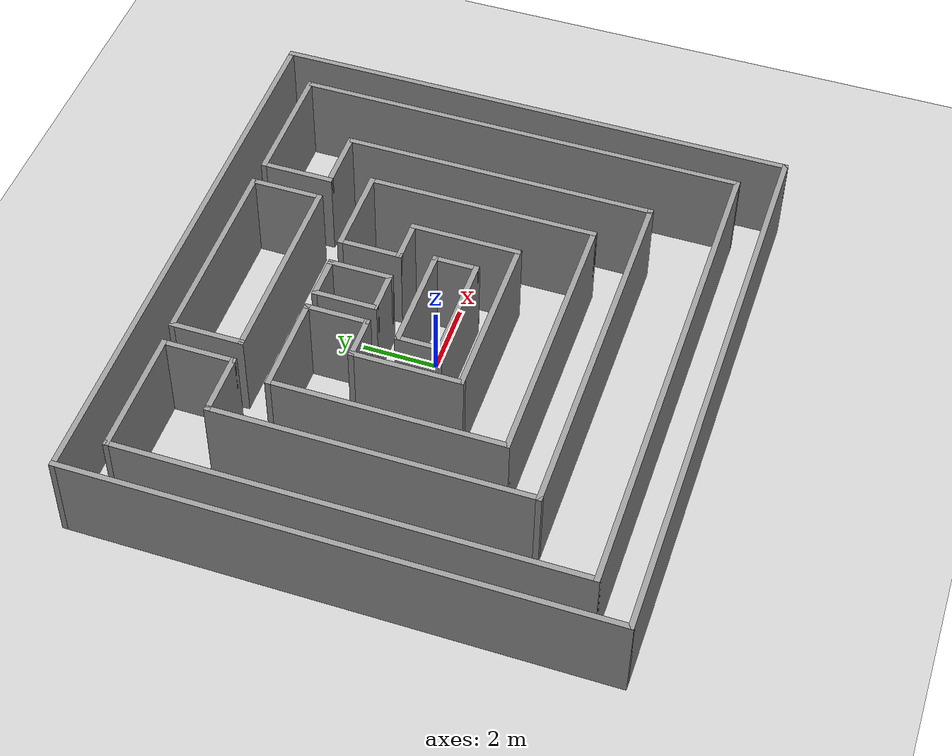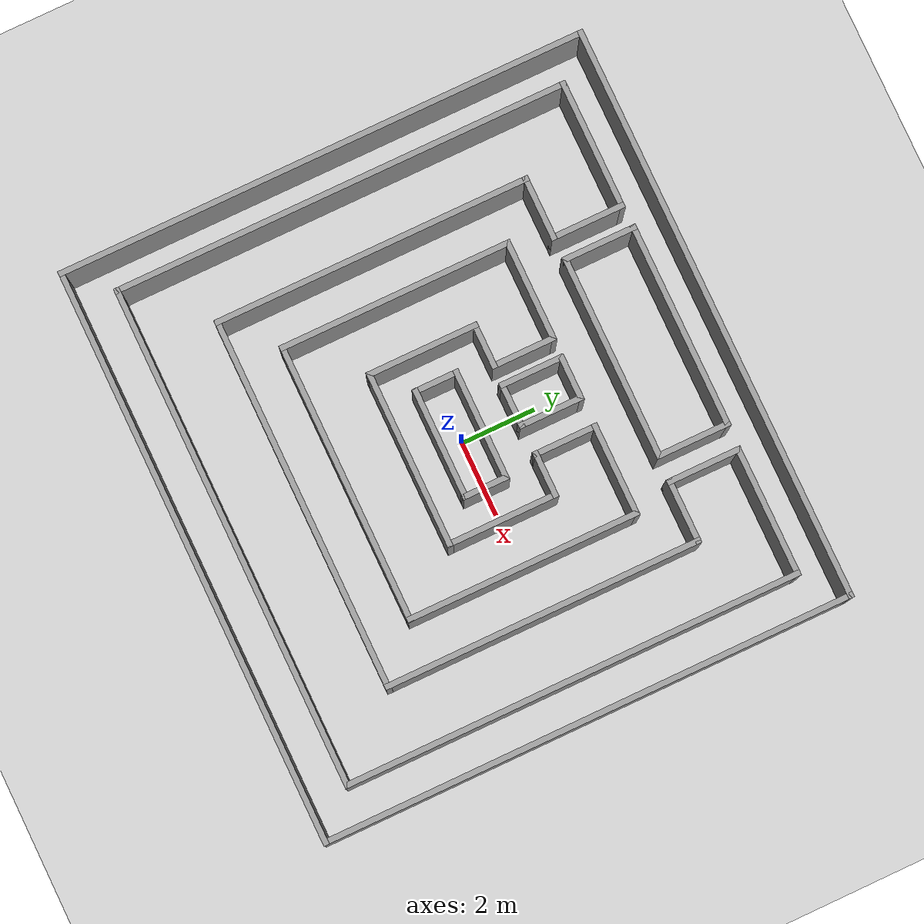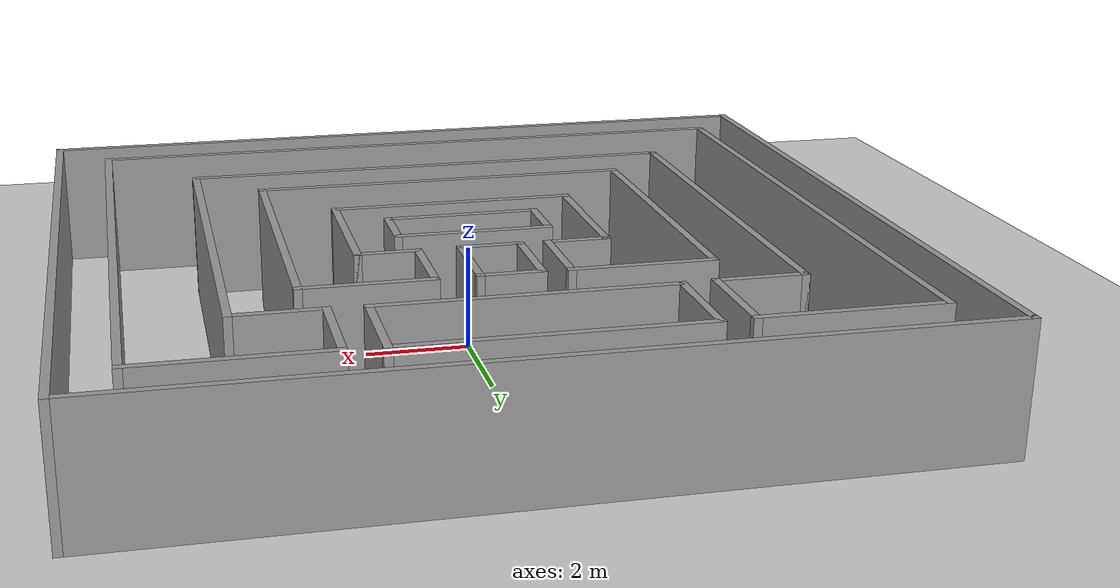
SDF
<sdf version="1.7">
 <world name="default">
  <light name="sun" type="directional">
   <pose>0 0 10 0 -0 0</pose>
   <diffuse>0.8 0.8 0.8 1</diffuse>
   <specular>0.2 0.2 0.2 1</specular>
   <attenuation>
    <range>1000</range>
    <constant>0.9</constant>
    <linear>0.01</linear>
    <quadratic>0.001</quadratic>
   </attenuation>
   <direction>-0.5 0.1 -0.9</direction>
   <spot><inner_angle>0</inner_angle><outer_angle>0</outer_angle><falloff>0</falloff></spot>
  </light>
  <model name="ground_plane">
   <static>1</static>
   <link name="link">
    <collision name="collision">
     <geometry><plane><normal>0 0 1</normal><size>100 100</size></plane></geometry>
     <surface>
      <contact><collide_bitmask>65535</collide_bitmask></contact>
      <friction><ode><mu>100</mu><mu2>50</mu2></ode></friction>
     </surface>
    </collision>
    <visual name="visual">
     <cast_shadows>0</cast_shadows>
     <geometry><plane><normal>0 0 1</normal><size>100 100</size></plane></geometry>
     <material>
      <script><uri>file://media/materials/scripts/gazebo.material</uri><name>Gazebo/Grey</name></script>
     </material>
    </visual>
   </link>
  </model>
  <gravity>0 0 -9.8</gravity>
  <magnetic_field>6e-06 2.3e-05 -4.2e-05</magnetic_field>
  <atmosphere type="adiabatic"/>
  <physics type="ode">
   <max_step_size>0.001</max_step_size>
   <real_time_factor>1</real_time_factor>
   <real_time_update_rate>1000</real_time_update_rate>
  </physics>
  <scene><ambient>0.4 0.4 0.4 1</ambient><background>0.7 0.7 0.7 1</background><shadows>1</shadows></scene>
  <spherical_coordinates>
   <surface_model>EARTH_WGS84</surface_model>
   <latitude_deg>0</latitude_deg>
   <longitude_deg>0</longitude_deg>
   <elevation>0</elevation>
   <heading_deg>0</heading_deg>
  </spherical_coordinates>
  <model name="cycle_world">
   <pose>-0.066212 -0.174493 0 0 -0 0</pose>
   <link name="Wall_176">
    <collision name="Wall_176_Collision">
     <geometry><box><size>14.25 0.15 2.5</size></box></geometry>
     <pose>0 0 1.25 0 -0 0</pose>
    </collision>
    <visual name="Wall_176_Visual">
     <pose>0 0 1.25 0 -0 0</pose>
     <geometry><box><size>14.25 0.15 2.5</size></box></geometry>
     <material>
      <script><uri>file://media/materials/scripts/gazebo.material</uri><name>Gazebo/Grey</name></script>
      <ambient>1 1 1 1</ambient>
     </material>
     <meta><layer>0</layer></meta>
    </visual>
    <pose>-7.675 0 0 0 -0 -1.5708</pose>
   </link>
   <link name="Wall_177">
    <collision name="Wall_177_Collision">
     <geometry><box><size>15.5 0.15 2.5</size></box></geometry>
     <pose>0 0 1.25 0 -0 0</pose>
    </collision>
    <visual name="Wall_177_Visual">
     <pose>0 0 1.25 0 -0 0</pose>
     <geometry><box><size>15.5 0.15 2.5</size></box></geometry>
     <material>
      <script><uri>file://media/materials/scripts/gazebo.material</uri><name>Gazebo/Grey</name></script>
      <ambient>1 1 1 1</ambient>
     </material>
     <meta><layer>0</layer></meta>
    </visual>
    <pose>0 -7.05 0 0 -0 0</pose>
   </link>
   <link name="Wall_178">
    <collision name="Wall_178_Collision">
     <geometry><box><size>14.25 0.15 2.5</size></box></geometry>
     <pose>0 0 1.25 0 -0 0</pose>
    </collision>
    <visual name="Wall_178_Visual">
     <pose>0 0 1.25 0 -0 0</pose>
     <geometry><box><size>14.25 0.15 2.5</size></box></geometry>
     <material>
      <script><uri>file://media/materials/scripts/gazebo.material</uri><name>Gazebo/Grey</name></script>
      <ambient>1 1 1 1</ambient>
     </material>
     <meta><layer>0</layer></meta>
    </visual>
    <pose>7.675 0 0 0 -0 1.5708</pose>
   </link>
   <link name="Wall_179">
    <collision name="Wall_179_Collision">
     <geometry><box><size>15.5 0.15 2.5</size></box></geometry>
     <pose>0 0 1.25 0 -0 0</pose>
    </collision>
    <visual name="Wall_179_Visual">
     <pose>0 0 1.25 0 -0 0</pose>
     <geometry><box><size>15.5 0.15 2.5</size></box></geometry>
     <material>
      <script><uri>file://media/materials/scripts/gazebo.material</uri><name>Gazebo/Grey</name></script>
      <ambient>1 1 1 1</ambient>
     </material>
     <meta><layer>0</layer></meta>
    </visual>
    <pose>0 7.05 0 0 -0 3.14159</pose>
   </link>
   <link name="Wall_181">
    <collision name="Wall_181_Collision">
     <geometry><box><size>12.25 0.15 2.5</size></box></geometry>
     <pose>0 0 1.25 0 -0 0</pose>
    </collision>
    <visual name="Wall_181_Visual">
     <pose>0 0 1.25 0 -0 0</pose>
     <geometry><box><size>12.25 0.15 2.5</size></box></geometry>
     <material>
      <script><uri>file://media/materials/scripts/gazebo.material</uri><name>Gazebo/Grey</name></script>
      <ambient>1 1 1 1</ambient>
     </material>
     <meta><layer>0</layer></meta>
    </visual>
    <pose>-6.70109 0.06087 0 0 -0 -1.5708</pose>
   </link>
   <link name="Wall_182">
    <collision name="Wall_182_Collision">
     <geometry><box><size>13.5 0.15 2.5</size></box></geometry>
     <pose>0 0 1.25 0 -0 0</pose>
    </collision>
    <visual name="Wall_182_Visual">
     <pose>0 0 1.25 0 -0 0</pose>
     <geometry><box><size>13.5 0.15 2.5</size></box></geometry>
     <material>
      <script><uri>file://media/materials/scripts/gazebo.material</uri><name>Gazebo/Grey</name></script>
      <ambient>1 1 1 1</ambient>
     </material>
     <meta><layer>0</layer></meta>
    </visual>
    <pose>-0.026087 -5.98913 0 0 -0 0</pose>
   </link>
   <link name="Wall_183">
    <collision name="Wall_183_Collision">
     <geometry><box><size>12.25 0.15 2.5</size></box></geometry>
     <pose>0 0 1.25 0 -0 0</pose>
    </collision>
    <visual name="Wall_183_Visual">
     <pose>0 0 1.25 0 -0 0</pose>
     <geometry><box><size>12.25 0.15 2.5</size></box></geometry>
     <material>
      <script><uri>file://media/materials/scripts/gazebo.material</uri><name>Gazebo/Grey</name></script>
      <ambient>1 1 1 1</ambient>
     </material>
     <meta><layer>0</layer></meta>
    </visual>
    <pose>6.64891 0.06087 0 0 -0 1.5708</pose>
   </link>
   <link name="Wall_184">
    <collision name="Wall_184_Collision">
     <geometry><box><size>3.5 0.15 2.5</size></box></geometry>
     <pose>0 0 1.25 0 -0 0</pose>
    </collision>
    <visual name="Wall_184_Visual">
     <pose>0 0 1.25 0 -0 0</pose>
     <geometry><box><size>3.5 0.15 2.5</size></box></geometry>
     <material>
      <script><uri>file://media/materials/scripts/gazebo.material</uri><name>Gazebo/Grey</name></script>
      <ambient>1 1 1 1</ambient>
     </material>
     <meta><layer>0</layer></meta>
    </visual>
    <pose>4.97391 6.11087 0 0 -0 3.14159</pose>
   </link>
   <link name="Wall_185">
    <collision name="Wall_185_Collision">
     <geometry><box><size>2 0.15 2.5</size></box></geometry>
     <pose>0 0 1.25 0 -0 0</pose>
    </collision>
    <visual name="Wall_185_Visual">
     <pose>0 0 1.25 0 -0 0</pose>
     <geometry><box><size>2 0.15 2.5</size></box></geometry>
     <material>
      <script><uri>file://media/materials/scripts/gazebo.material</uri><name>Gazebo/Grey</name></script>
      <ambient>1 1 1 1</ambient>
     </material>
     <meta><layer>0</layer></meta>
    </visual>
    <pose>3.29891 5.18587 0 0 -0 -1.5708</pose>
   </link>
   <link name="Wall_186">
    <collision name="Wall_186_Collision">
     <geometry><box><size>1.75 0.15 2.5</size></box></geometry>
     <pose>0 0 1.25 0 -0 0</pose>
    </collision>
    <visual name="Wall_186_Visual">
     <pose>0 0 1.25 0 -0 0</pose>
     <geometry><box><size>1.75 0.15 2.5</size></box></geometry>
     <material>
      <script><uri>file://media/materials/scripts/gazebo.material</uri><name>Gazebo/Grey</name></script>
      <ambient>1 1 1 1</ambient>
     </material>
     <meta><layer>0</layer></meta>
    </visual>
    <pose>4.09891 4.26087 0 0 -0 0</pose>
   </link>
   <link name="Wall_187">
    <collision name="Wall_187_Collision">
     <geometry><box><size>8.5 0.15 2.5</size></box></geometry>
     <pose>0 0 1.25 0 -0 0</pose>
    </collision>
    <visual name="Wall_187_Visual">
     <pose>0 0 1.25 0 -0 0</pose>
     <geometry><box><size>8.5 0.15 2.5</size></box></geometry>
     <material>
      <script><uri>file://media/materials/scripts/gazebo.material</uri><name>Gazebo/Grey</name></script>
      <ambient>1 1 1 1</ambient>
     </material>
     <meta><layer>0</layer></meta>
    </visual>
    <pose>4.89891 0.08587 0 0 -0 -1.5708</pose>
   </link>
   <link name="Wall_188">
    <collision name="Wall_188_Collision">
     <geometry><box><size>10 0.15 2.5</size></box></geometry>
     <pose>0 0 1.25 0 -0 0</pose>
    </collision>
    <visual name="Wall_188_Visual">
     <pose>0 0 1.25 0 -0 0</pose>
     <geometry><box><size>10 0.15 2.5</size></box></geometry>
     <material>
      <script><uri>file://media/materials/scripts/gazebo.material</uri><name>Gazebo/Grey</name></script>
      <ambient>1 1 1 1</ambient>
     </material>
     <meta><layer>0</layer></meta>
    </visual>
    <pose>-0.026087 -4.08913 0 0 -0 3.14159</pose>
   </link>
   <link name="Wall_189">
    <collision name="Wall_189_Collision">
     <geometry><box><size>8.5 0.15 2.5</size></box></geometry>
     <pose>0 0 1.25 0 -0 0</pose>
    </collision>
    <visual name="Wall_189_Visual">
     <pose>0 0 1.25 0 -0 0</pose>
     <geometry><box><size>8.5 0.15 2.5</size></box></geometry>
     <material>
      <script><uri>file://media/materials/scripts/gazebo.material</uri><name>Gazebo/Grey</name></script>
      <ambient>1 1 1 1</ambient>
     </material>
     <meta><layer>0</layer></meta>
    </visual>
    <pose>-4.95109 0.08587 0 0 -0 1.5708</pose>
   </link>
   <link name="Wall_190">
    <collision name="Wall_190_Collision">
     <geometry><box><size>1.75 0.15 2.5</size></box></geometry>
     <pose>0 0 1.25 0 -0 0</pose>
    </collision>
    <visual name="Wall_190_Visual">
     <pose>0 0 1.25 0 -0 0</pose>
     <geometry><box><size>1.75 0.15 2.5</size></box></geometry>
     <material>
      <script><uri>file://media/materials/scripts/gazebo.material</uri><name>Gazebo/Grey</name></script>
      <ambient>1 1 1 1</ambient>
     </material>
     <meta><layer>0</layer></meta>
    </visual>
    <pose>-4.15109 4.26087 0 0 -0 0</pose>
   </link>
   <link name="Wall_191">
    <collision name="Wall_191_Collision">
     <geometry><box><size>2 0.15 2.5</size></box></geometry>
     <pose>0 0 1.25 0 -0 0</pose>
    </collision>
    <visual name="Wall_191_Visual">
     <pose>0 0 1.25 0 -0 0</pose>
     <geometry><box><size>2 0.15 2.5</size></box></geometry>
     <material>
      <script><uri>file://media/materials/scripts/gazebo.material</uri><name>Gazebo/Grey</name></script>
      <ambient>1 1 1 1</ambient>
     </material>
     <meta><layer>0</layer></meta>
    </visual>
    <pose>-3.35109 5.18587 0 0 -0 1.5708</pose>
   </link>
   <link name="Wall_192">
    <collision name="Wall_192_Collision">
     <geometry><box><size>3.5 0.15 2.5</size></box></geometry>
     <pose>0 0 1.25 0 -0 0</pose>
    </collision>
    <visual name="Wall_192_Visual">
     <pose>0 0 1.25 0 -0 0</pose>
     <geometry><box><size>3.5 0.15 2.5</size></box></geometry>
     <material>
      <script><uri>file://media/materials/scripts/gazebo.material</uri><name>Gazebo/Grey</name></script>
      <ambient>1 1 1 1</ambient>
     </material>
     <meta><layer>0</layer></meta>
    </visual>
    <pose>-5.02609 6.11087 0 0 -0 3.14159</pose>
   </link>
   <link name="Wall_198">
    <collision name="Wall_198_Collision">
     <geometry><box><size>2 0.15 2.5</size></box></geometry>
     <pose>0 0 1.25 0 -0 0</pose>
    </collision>
    <visual name="Wall_198_Visual">
     <pose>0 0 1.25 0 -0 0</pose>
     <geometry><box><size>2 0.15 2.5</size></box></geometry>
     <material>
      <script><uri>file://media/materials/scripts/gazebo.material</uri><name>Gazebo/Grey</name></script>
      <ambient>1 1 1 1</ambient>
     </material>
     <meta><layer>0</layer></meta>
    </visual>
    <pose>-2.73587 5.22065 0 0 -0 -1.5708</pose>
   </link>
   <link name="Wall_199">
    <collision name="Wall_199_Collision">
     <geometry><box><size>5.5 0.15 2.5</size></box></geometry>
     <pose>0 0 1.25 0 -0 0</pose>
    </collision>
    <visual name="Wall_199_Visual">
     <pose>0 0 1.25 0 -0 0</pose>
     <geometry><box><size>5.5 0.15 2.5</size></box></geometry>
     <material>
      <script><uri>file://media/materials/scripts/gazebo.material</uri><name>Gazebo/Grey</name></script>
      <ambient>1 1 1 1</ambient>
     </material>
     <meta><layer>0</layer></meta>
    </visual>
    <pose>-0.06087 4.29565 0 0 -0 0</pose>
   </link>
   <link name="Wall_200">
    <collision name="Wall_200_Collision">
     <geometry><box><size>2 0.15 2.5</size></box></geometry>
     <pose>0 0 1.25 0 -0 0</pose>
    </collision>
    <visual name="Wall_200_Visual">
     <pose>0 0 1.25 0 -0 0</pose>
     <geometry><box><size>2 0.15 2.5</size></box></geometry>
     <material>
      <script><uri>file://media/materials/scripts/gazebo.material</uri><name>Gazebo/Grey</name></script>
      <ambient>1 1 1 1</ambient>
     </material>
     <meta><layer>0</layer></meta>
    </visual>
    <pose>2.61413 5.22065 0 0 -0 1.5708</pose>
   </link>
   <link name="Wall_201">
    <collision name="Wall_201_Collision">
     <geometry><box><size>5.5 0.15 2.5</size></box></geometry>
     <pose>0 0 1.25 0 -0 0</pose>
    </collision>
    <visual name="Wall_201_Visual">
     <pose>0 0 1.25 0 -0 0</pose>
     <geometry><box><size>5.5 0.15 2.5</size></box></geometry>
     <material>
      <script><uri>file://media/materials/scripts/gazebo.material</uri><name>Gazebo/Grey</name></script>
      <ambient>1 1 1 1</ambient>
     </material>
     <meta><layer>0</layer></meta>
    </visual>
    <pose>-0.06087 6.14565 0 0 -0 3.14159</pose>
   </link>
   <link name="Wall_204">
    <collision name="Wall_204_Collision">
     <geometry><box><size>1.25 0.15 2.5</size></box></geometry>
     <pose>0 0 1.25 0 -0 0</pose>
    </collision>
    <visual name="Wall_204_Visual">
     <pose>0 0 1.25 0 -0 0</pose>
     <geometry><box><size>1.25 0.15 2.5</size></box></geometry>
     <material>
      <script><uri>file://media/materials/scripts/gazebo.material</uri><name>Gazebo/Grey</name></script>
      <ambient>1 1 1 1</ambient>
     </material>
     <meta><layer>0</layer></meta>
    </visual>
    <pose>-1.34457 0.134783 0 0 -0 -1.5708</pose>
   </link>
   <link name="Wall_205">
    <collision name="Wall_205_Collision">
     <geometry><box><size>3 0.15 2.5</size></box></geometry>
     <pose>0 0 1.25 0 -0 0</pose>
    </collision>
    <visual name="Wall_205_Visual">
     <pose>0 0 1.25 0 -0 0</pose>
     <geometry><box><size>3 0.15 2.5</size></box></geometry>
     <material>
      <script><uri>file://media/materials/scripts/gazebo.material</uri><name>Gazebo/Grey</name></script>
      <ambient>1 1 1 1</ambient>
     </material>
     <meta><layer>0</layer></meta>
    </visual>
    <pose>0.080435 -0.415217 0 0 -0 0</pose>
   </link>
   <link name="Wall_206">
    <collision name="Wall_206_Collision">
     <geometry><box><size>1.25 0.15 2.5</size></box></geometry>
     <pose>0 0 1.25 0 -0 0</pose>
    </collision>
    <visual name="Wall_206_Visual">
     <pose>0 0 1.25 0 -0 0</pose>
     <geometry><box><size>1.25 0.15 2.5</size></box></geometry>
     <material>
      <script><uri>file://media/materials/scripts/gazebo.material</uri><name>Gazebo/Grey</name></script>
      <ambient>1 1 1 1</ambient>
     </material>
     <meta><layer>0</layer></meta>
    </visual>
    <pose>1.50544 0.134783 0 0 -0 1.5708</pose>
   </link>
   <link name="Wall_207">
    <collision name="Wall_207_Collision">
     <geometry><box><size>3 0.15 2.5</size></box></geometry>
     <pose>0 0 1.25 0 -0 0</pose>
    </collision>
    <visual name="Wall_207_Visual">
     <pose>0 0 1.25 0 -0 0</pose>
     <geometry><box><size>3 0.15 2.5</size></box></geometry>
     <material>
      <script><uri>file://media/materials/scripts/gazebo.material</uri><name>Gazebo/Grey</name></script>
      <ambient>1 1 1 1</ambient>
     </material>
     <meta><layer>0</layer></meta>
    </visual>
    <pose>0.080435 0.684783 0 0 -0 3.14159</pose>
   </link>
   <link name="Wall_209">
    <collision name="Wall_209_Collision">
     <geometry><box><size>1.75 0.15 2.5</size></box></geometry>
     <pose>0 0 1.25 0 -0 0</pose>
    </collision>
    <visual name="Wall_209_Visual">
     <pose>0 0 1.25 0 -0 0</pose>
     <geometry><box><size>1.75 0.15 2.5</size></box></geometry>
     <material>
      <script><uri>file://media/materials/scripts/gazebo.material</uri><name>Gazebo/Grey</name></script>
      <ambient>1 1 1 1</ambient>
     </material>
     <meta><layer>0</layer></meta>
    </visual>
    <pose>-1.10109 2.38913 0 0 -0 1.5708</pose>
   </link>
   <link name="Wall_210">
    <collision name="Wall_210_Collision">
     <geometry><box><size>2.75 0.15 2.5</size></box></geometry>
     <pose>0 0 1.25 0 -0 0</pose>
    </collision>
    <visual name="Wall_210_Visual">
     <pose>0 0 1.25 0 -0 0</pose>
     <geometry><box><size>2.75 0.15 2.5</size></box></geometry>
     <material>
      <script><uri>file://media/materials/scripts/gazebo.material</uri><name>Gazebo/Grey</name></script>
      <ambient>1 1 1 1</ambient>
     </material>
     <meta><layer>0</layer></meta>
    </visual>
    <pose>-2.40109 3.18913 0 0 -0 3.14159</pose>
   </link>
   <link name="Wall_211">
    <collision name="Wall_211_Collision">
     <geometry><box><size>6.25 0.15 2.5</size></box></geometry>
     <pose>0 0 1.25 0 -0 0</pose>
    </collision>
    <visual name="Wall_211_Visual">
     <pose>0 0 1.25 0 -0 0</pose>
     <geometry><box><size>6.25 0.15 2.5</size></box></geometry>
     <material>
      <script><uri>file://media/materials/scripts/gazebo.material</uri><name>Gazebo/Grey</name></script>
      <ambient>1 1 1 1</ambient>
     </material>
     <meta><layer>0</layer></meta>
    </visual>
    <pose>-3.70109 0.13913 0 0 -0 -1.5708</pose>
   </link>
   <link name="Wall_212">
    <collision name="Wall_212_Collision">
     <geometry><box><size>7.5 0.15 2.5</size></box></geometry>
     <pose>0 0 1.25 0 -0 0</pose>
    </collision>
    <visual name="Wall_212_Visual">
     <pose>0 0 1.25 0 -0 0</pose>
     <geometry><box><size>7.5 0.15 2.5</size></box></geometry>
     <material>
      <script><uri>file://media/materials/scripts/gazebo.material</uri><name>Gazebo/Grey</name></script>
      <ambient>1 1 1 1</ambient>
     </material>
     <meta><layer>0</layer></meta>
    </visual>
    <pose>-0.026087 -2.91087 0 0 -0 0</pose>
   </link>
   <link name="Wall_213">
    <collision name="Wall_213_Collision">
     <geometry><box><size>6.25 0.15 2.5</size></box></geometry>
     <pose>0 0 1.25 0 -0 0</pose>
    </collision>
    <visual name="Wall_213_Visual">
     <pose>0 0 1.25 0 -0 0</pose>
     <geometry><box><size>6.25 0.15 2.5</size></box></geometry>
     <material>
      <script><uri>file://media/materials/scripts/gazebo.material</uri><name>Gazebo/Grey</name></script>
      <ambient>1 1 1 1</ambient>
     </material>
     <meta><layer>0</layer></meta>
    </visual>
    <pose>3.64891 0.13913 0 0 -0 1.5708</pose>
   </link>
   <link name="Wall_214">
    <collision name="Wall_214_Collision">
     <geometry><box><size>2.5 0.15 2.5</size></box></geometry>
     <pose>0 0 1.25 0 -0 0</pose>
    </collision>
    <visual name="Wall_214_Visual">
     <pose>0 0 1.25 0 -0 0</pose>
     <geometry><box><size>2.5 0.15 2.5</size></box></geometry>
     <material>
      <script><uri>file://media/materials/scripts/gazebo.material</uri><name>Gazebo/Grey</name></script>
      <ambient>1 1 1 1</ambient>
     </material>
     <meta><layer>0</layer></meta>
    </visual>
    <pose>2.47391 3.18913 0 0 -0 3.14159</pose>
   </link>
   <link name="Wall_215">
    <collision name="Wall_215_Collision">
     <geometry><box><size>1.75 0.15 2.5</size></box></geometry>
     <pose>0 0 1.25 0 -0 0</pose>
    </collision>
    <visual name="Wall_215_Visual">
     <pose>0 0 1.25 0 -0 0</pose>
     <geometry><box><size>1.75 0.15 2.5</size></box></geometry>
     <material>
      <script><uri>file://media/materials/scripts/gazebo.material</uri><name>Gazebo/Grey</name></script>
      <ambient>1 1 1 1</ambient>
     </material>
     <meta><layer>0</layer></meta>
    </visual>
    <pose>1.29891 2.38913 0 0 -0 -1.5708</pose>
   </link>
   <link name="Wall_216">
    <collision name="Wall_216_Collision">
     <geometry><box><size>1.25 0.15 2.5</size></box></geometry>
     <pose>0 0 1.25 0 -0 0</pose>
    </collision>
    <visual name="Wall_216_Visual">
     <pose>0 0 1.25 0 -0 0</pose>
     <geometry><box><size>1.25 0.15 2.5</size></box></geometry>
     <material>
      <script><uri>file://media/materials/scripts/gazebo.material</uri><name>Gazebo/Grey</name></script>
      <ambient>1 1 1 1</ambient>
     </material>
     <meta><layer>0</layer></meta>
    </visual>
    <pose>1.84891 1.58913 0 0 -0 0</pose>
   </link>
   <link name="Wall_217">
    <collision name="Wall_217_Collision">
     <geometry><box><size>3 0.15 2.5</size></box></geometry>
     <pose>0 0 1.25 0 -0 0</pose>
    </collision>
    <visual name="Wall_217_Visual">
     <pose>0 0 1.25 0 -0 0</pose>
     <geometry><box><size>3 0.15 2.5</size></box></geometry>
     <material>
      <script><uri>file://media/materials/scripts/gazebo.material</uri><name>Gazebo/Grey</name></script>
      <ambient>1 1 1 1</ambient>
     </material>
     <meta><layer>0</layer></meta>
    </visual>
    <pose>2.39891 0.16413 0 0 -0 -1.5708</pose>
   </link>
   <link name="Wall_218">
    <collision name="Wall_218_Collision">
     <geometry><box><size>4.75 0.15 2.5</size></box></geometry>
     <pose>0 0 1.25 0 -0 0</pose>
    </collision>
    <visual name="Wall_218_Visual">
     <pose>0 0 1.25 0 -0 0</pose>
     <geometry><box><size>4.75 0.15 2.5</size></box></geometry>
     <material>
      <script><uri>file://media/materials/scripts/gazebo.material</uri><name>Gazebo/Grey</name></script>
      <ambient>1 1 1 1</ambient>
     </material>
     <meta><layer>0</layer></meta>
    </visual>
    <pose>0.098913 -1.26087 0 0 -0 3.14159</pose>
   </link>
   <link name="Wall_221">
    <collision name="Wall_221_Collision">
     <geometry><box><size>1.25 0.15 2.5</size></box></geometry>
     <pose>0 0 1.25 0 -0 0</pose>
    </collision>
    <visual name="Wall_221_Visual">
     <pose>0 0 1.25 0 -0 0</pose>
     <geometry><box><size>1.25 0.15 2.5</size></box></geometry>
     <material>
      <script><uri>file://media/materials/scripts/gazebo.material</uri><name>Gazebo/Grey</name></script>
      <ambient>1 1 1 1</ambient>
     </material>
     <meta><layer>0</layer></meta>
    </visual>
    <pose>-1.65109 1.58913 0 0 -0 3.14159</pose>
   </link>
   <link name="Wall_222">
    <collision name="Wall_222_Collision">
     <geometry><box><size>3 0.15 2.5</size></box></geometry>
     <pose>0 0 1.25 0 -0 0</pose>
    </collision>
    <visual name="Wall_222_Visual">
     <pose>0 0 1.25 0 -0 0</pose>
     <geometry><box><size>3 0.15 2.5</size></box></geometry>
     <material>
      <script><uri>file://media/materials/scripts/gazebo.material</uri><name>Gazebo/Grey</name></script>
      <ambient>1 1 1 1</ambient>
     </material>
     <meta><layer>0</layer></meta>
    </visual>
    <pose>-2.20109 0.16413 0 0 -0 -1.5708</pose>
   </link>
   <link name="Wall_224">
    <collision name="Wall_224_Collision">
     <geometry><box><size>1.75 0.15 2.5</size></box></geometry>
     <pose>0 0 1.25 0 -0 0</pose>
    </collision>
    <visual name="Wall_224_Visual">
     <pose>0 0 1.25 0 -0 0</pose>
     <geometry><box><size>1.75 0.15 2.5</size></box></geometry>
     <material>
      <script><uri>file://media/materials/scripts/gazebo.material</uri><name>Gazebo/Grey</name></script>
      <ambient>1 1 1 1</ambient>
     </material>
     <meta><layer>0</layer></meta>
    </visual>
    <pose>-0.586666 2.37062 0 0 -0 -1.5708</pose>
   </link>
   <link name="Wall_225">
    <collision name="Wall_225_Collision">
     <geometry><box><size>1.25 0.15 2.5</size></box></geometry>
     <pose>0 0 1.25 0 -0 0</pose>
    </collision>
    <visual name="Wall_225_Visual">
     <pose>0 0 1.25 0 -0 0</pose>
     <geometry><box><size>1.25 0.15 2.5</size></box></geometry>
     <material>
      <script><uri>file://media/materials/scripts/gazebo.material</uri><name>Gazebo/Grey</name></script>
      <ambient>1 1 1 1</ambient>
     </material>
     <meta><layer>0</layer></meta>
    </visual>
    <pose>-0.036666 1.57062 0 0 -0 0</pose>
   </link>
   <link name="Wall_226">
    <collision name="Wall_226_Collision">
     <geometry><box><size>1.75 0.15 2.5</size></box></geometry>
     <pose>0 0 1.25 0 -0 0</pose>
    </collision>
    <visual name="Wall_226_Visual">
     <pose>0 0 1.25 0 -0 0</pose>
     <geometry><box><size>1.75 0.15 2.5</size></box></geometry>
     <material>
      <script><uri>file://media/materials/scripts/gazebo.material</uri><name>Gazebo/Grey</name></script>
      <ambient>1 1 1 1</ambient>
     </material>
     <meta><layer>0</layer></meta>
    </visual>
    <pose>0.513334 2.37062 0 0 -0 1.5708</pose>
   </link>
   <link name="Wall_227">
    <collision name="Wall_227_Collision">
     <geometry><box><size>1.25 0.15 2.5</size></box></geometry>
     <pose>0 0 1.25 0 -0 0</pose>
    </collision>
    <visual name="Wall_227_Visual">
     <pose>0 0 1.25 0 -0 0</pose>
     <geometry><box><size>1.25 0.15 2.5</size></box></geometry>
     <material>
      <script><uri>file://media/materials/scripts/gazebo.material</uri><name>Gazebo/Grey</name></script>
      <ambient>1 1 1 1</ambient>
     </material>
     <meta><layer>0</layer></meta>
    </visual>
    <pose>-0.036666 3.17062 0 0 -0 3.14159</pose>
   </link>
   <static>1</static>
  </model>
 </world>
</sdf>
